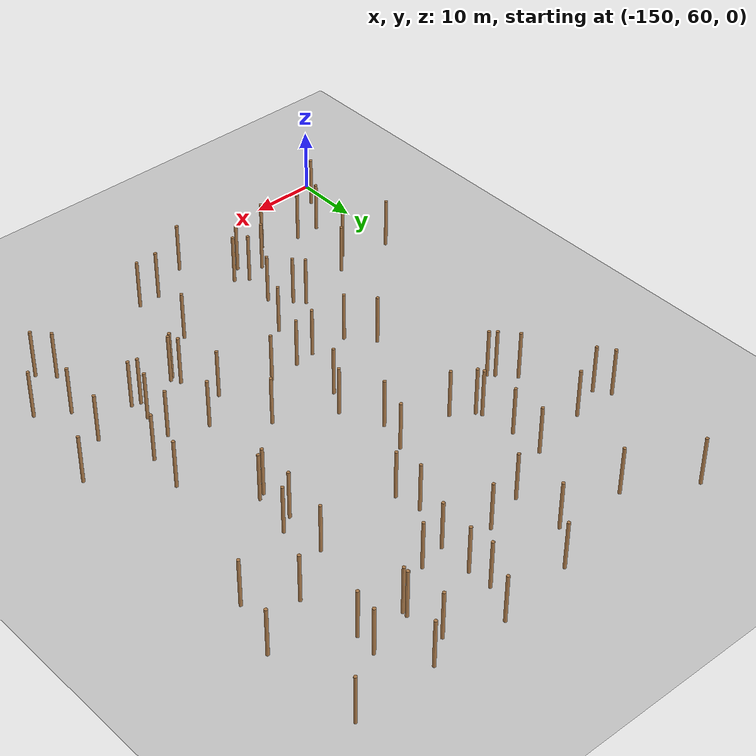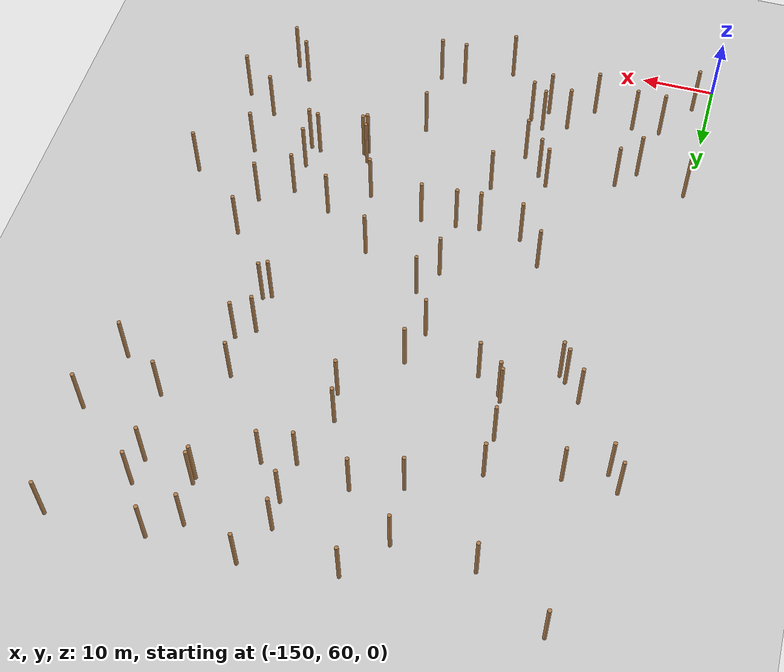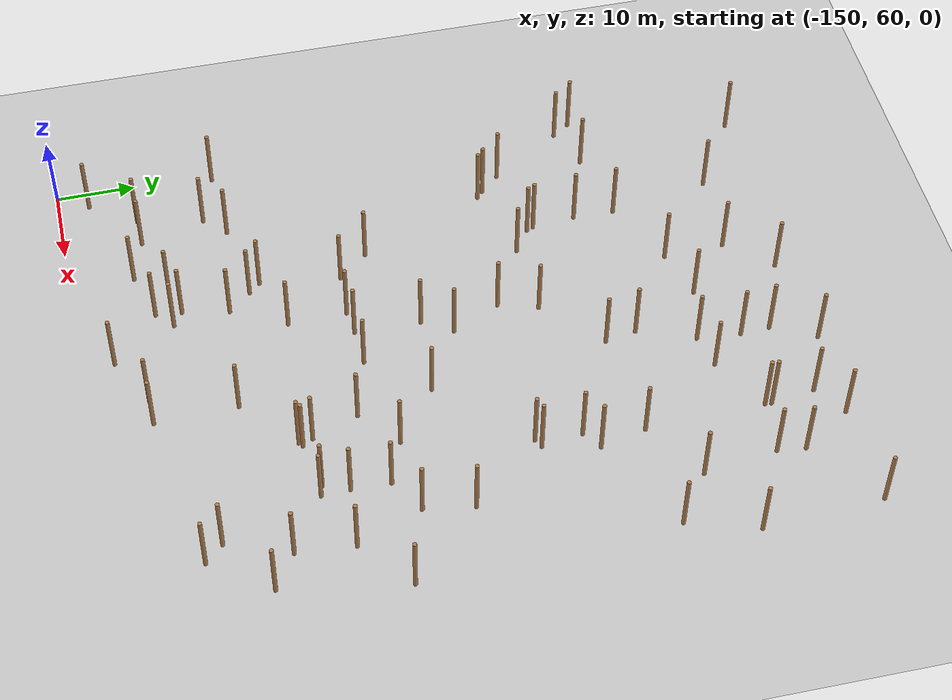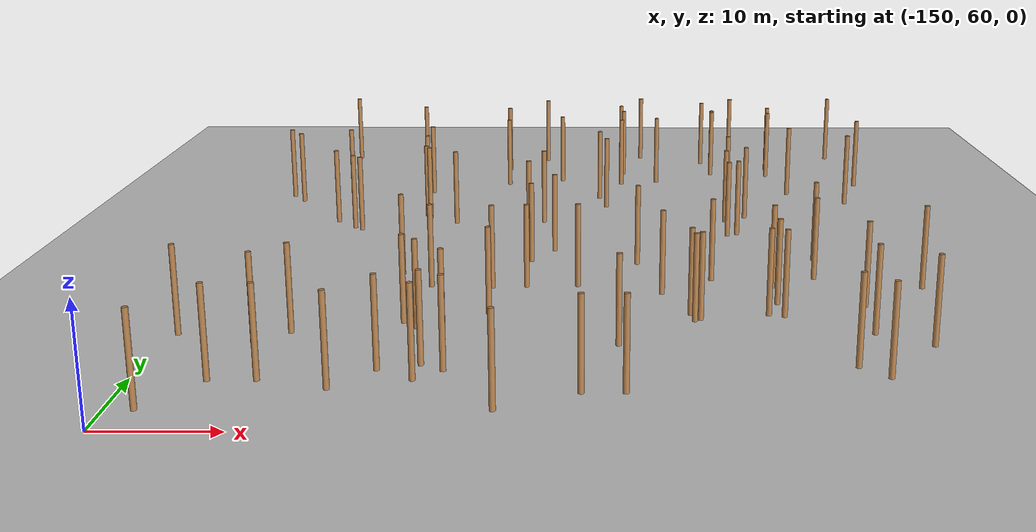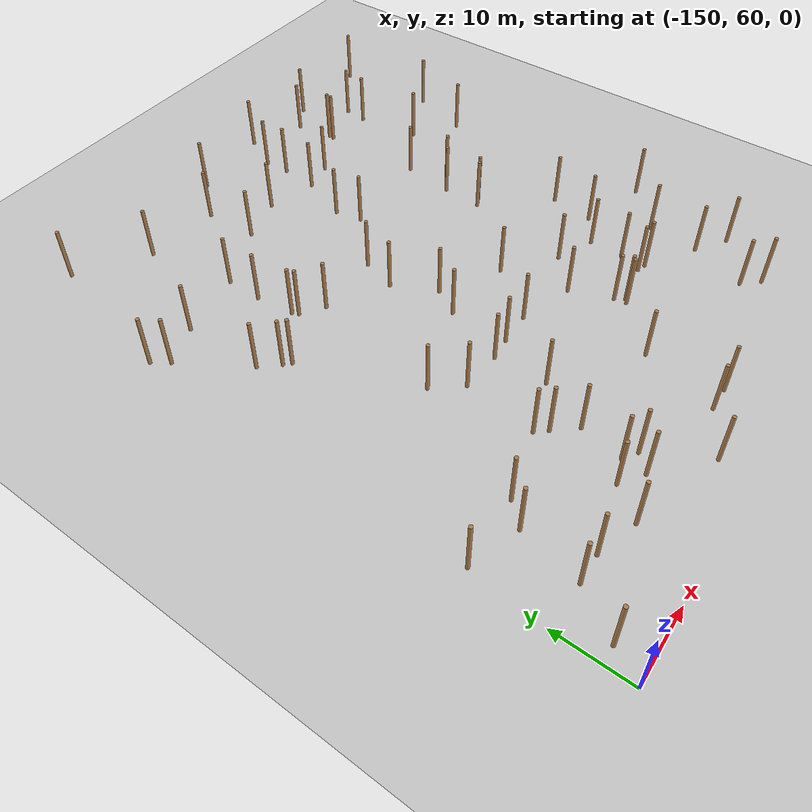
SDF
<sdf version="1.5">
 <world name="padure_tactica">
  <include><uri>model://sun</uri></include>
  <include><uri>model://ground_plane</uri></include>
  <model name="tree_11">
   <static>true</static>
   <pose>-99.19 116.53 4.0 0 0 0</pose>
   <link name="link">
    <collision name="collision">
     <geometry><cylinder><radius>0.25</radius><length>8.0</length></cylinder></geometry>
    </collision>
    <visual name="visual">
     <geometry><cylinder><radius>0.25</radius><length>8.0</length></cylinder></geometry>
     <material>
      <script><uri>file://media/materials/scripts/gazebo.material</uri><name>Gazebo/Wood</name></script>
     </material>
    </visual>
   </link>
  </model>
  <model name="tree_15">
   <static>true</static>
   <pose>-132.19 96.85 4.0 0 0 0</pose>
   <link name="link">
    <collision name="collision">
     <geometry><cylinder><radius>0.25</radius><length>8.0</length></cylinder></geometry>
    </collision>
    <visual name="visual">
     <geometry><cylinder><radius>0.25</radius><length>8.0</length></cylinder></geometry>
     <material>
      <script><uri>file://media/materials/scripts/gazebo.material</uri><name>Gazebo/Wood</name></script>
     </material>
    </visual>
   </link>
  </model>
  <model name="tree_48">
   <static>true</static>
   <pose>-112.89 126.73 4.0 0 0 0</pose>
   <link name="link">
    <collision name="collision">
     <geometry><cylinder><radius>0.25</radius><length>8.0</length></cylinder></geometry>
    </collision>
    <visual name="visual">
     <geometry><cylinder><radius>0.25</radius><length>8.0</length></cylinder></geometry>
     <material>
      <script><uri>file://media/materials/scripts/gazebo.material</uri><name>Gazebo/Wood</name></script>
     </material>
    </visual>
   </link>
  </model>
  <model name="tree_62">
   <static>true</static>
   <pose>-149.11 79.88 4.0 0 0 0</pose>
   <link name="link">
    <collision name="collision">
     <geometry><cylinder><radius>0.25</radius><length>8.0</length></cylinder></geometry>
    </collision>
    <visual name="visual">
     <geometry><cylinder><radius>0.25</radius><length>8.0</length></cylinder></geometry>
     <material>
      <script><uri>file://media/materials/scripts/gazebo.material</uri><name>Gazebo/Wood</name></script>
     </material>
    </visual>
   </link>
  </model>
  <model name="tree_70">
   <static>true</static>
   <pose>-110.21 133.75 4.0 0 0 0</pose>
   <link name="link">
    <collision name="collision">
     <geometry><cylinder><radius>0.25</radius><length>8.0</length></cylinder></geometry>
    </collision>
    <visual name="visual">
     <geometry><cylinder><radius>0.25</radius><length>8.0</length></cylinder></geometry>
     <material>
      <script><uri>file://media/materials/scripts/gazebo.material</uri><name>Gazebo/Wood</name></script>
     </material>
    </visual>
   </link>
  </model>
  <model name="tree_73">
   <static>true</static>
   <pose>-123.09 85.52 4.0 0 0 0</pose>
   <link name="link">
    <collision name="collision">
     <geometry><cylinder><radius>0.25</radius><length>8.0</length></cylinder></geometry>
    </collision>
    <visual name="visual">
     <geometry><cylinder><radius>0.25</radius><length>8.0</length></cylinder></geometry>
     <material>
      <script><uri>file://media/materials/scripts/gazebo.material</uri><name>Gazebo/Wood</name></script>
     </material>
    </visual>
   </link>
  </model>
  <model name="tree_102">
   <static>true</static>
   <pose>-97.01 93.20 4.0 0 0 0</pose>
   <link name="link">
    <collision name="collision">
     <geometry><cylinder><radius>0.25</radius><length>8.0</length></cylinder></geometry>
    </collision>
    <visual name="visual">
     <geometry><cylinder><radius>0.25</radius><length>8.0</length></cylinder></geometry>
     <material>
      <script><uri>file://media/materials/scripts/gazebo.material</uri><name>Gazebo/Wood</name></script>
     </material>
    </visual>
   </link>
  </model>
  <model name="tree_120">
   <static>true</static>
   <pose>-90.61 128.84 4.0 0 0 0</pose>
   <link name="link">
    <collision name="collision">
     <geometry><cylinder><radius>0.25</radius><length>8.0</length></cylinder></geometry>
    </collision>
    <visual name="visual">
     <geometry><cylinder><radius>0.25</radius><length>8.0</length></cylinder></geometry>
     <material>
      <script><uri>file://media/materials/scripts/gazebo.material</uri><name>Gazebo/Wood</name></script>
     </material>
    </visual>
   </link>
  </model>
  <model name="tree_137">
   <static>true</static>
   <pose>-123.27 92.84 4.0 0 0 0</pose>
   <link name="link">
    <collision name="collision">
     <geometry><cylinder><radius>0.25</radius><length>8.0</length></cylinder></geometry>
    </collision>
    <visual name="visual">
     <geometry><cylinder><radius>0.25</radius><length>8.0</length></cylinder></geometry>
     <material>
      <script><uri>file://media/materials/scripts/gazebo.material</uri><name>Gazebo/Wood</name></script>
     </material>
    </visual>
   </link>
  </model>
  <model name="tree_142">
   <static>true</static>
   <pose>-104.43 84.11 4.0 0 0 0</pose>
   <link name="link">
    <collision name="collision">
     <geometry><cylinder><radius>0.25</radius><length>8.0</length></cylinder></geometry>
    </collision>
    <visual name="visual">
     <geometry><cylinder><radius>0.25</radius><length>8.0</length></cylinder></geometry>
     <material>
      <script><uri>file://media/materials/scripts/gazebo.material</uri><name>Gazebo/Wood</name></script>
     </material>
    </visual>
   </link>
  </model>
  <model name="tree_147">
   <static>true</static>
   <pose>-99.47 110.82 4.0 0 0 0</pose>
   <link name="link">
    <collision name="collision">
     <geometry><cylinder><radius>0.25</radius><length>8.0</length></cylinder></geometry>
    </collision>
    <visual name="visual">
     <geometry><cylinder><radius>0.25</radius><length>8.0</length></cylinder></geometry>
     <material>
      <script><uri>file://media/materials/scripts/gazebo.material</uri><name>Gazebo/Wood</name></script>
     </material>
    </visual>
   </link>
  </model>
  <model name="tree_150">
   <static>true</static>
   <pose>-98.32 85.27 4.0 0 0 0</pose>
   <link name="link">
    <collision name="collision">
     <geometry><cylinder><radius>0.25</radius><length>8.0</length></cylinder></geometry>
    </collision>
    <visual name="visual">
     <geometry><cylinder><radius>0.25</radius><length>8.0</length></cylinder></geometry>
     <material>
      <script><uri>file://media/materials/scripts/gazebo.material</uri><name>Gazebo/Wood</name></script>
     </material>
    </visual>
   </link>
  </model>
  <model name="tree_154">
   <static>true</static>
   <pose>-117.68 105.11 4.0 0 0 0</pose>
   <link name="link">
    <collision name="collision">
     <geometry><cylinder><radius>0.25</radius><length>8.0</length></cylinder></geometry>
    </collision>
    <visual name="visual">
     <geometry><cylinder><radius>0.25</radius><length>8.0</length></cylinder></geometry>
     <material>
      <script><uri>file://media/materials/scripts/gazebo.material</uri><name>Gazebo/Wood</name></script>
     </material>
    </visual>
   </link>
  </model>
  <model name="tree_168">
   <static>true</static>
   <pose>-111.42 67.45 4.0 0 0 0</pose>
   <link name="link">
    <collision name="collision">
     <geometry><cylinder><radius>0.25</radius><length>8.0</length></cylinder></geometry>
    </collision>
    <visual name="visual">
     <geometry><cylinder><radius>0.25</radius><length>8.0</length></cylinder></geometry>
     <material>
      <script><uri>file://media/materials/scripts/gazebo.material</uri><name>Gazebo/Wood</name></script>
     </material>
    </visual>
   </link>
  </model>
  <model name="tree_179">
   <static>true</static>
   <pose>-121.34 64.03 4.0 0 0 0</pose>
   <link name="link">
    <collision name="collision">
     <geometry><cylinder><radius>0.25</radius><length>8.0</length></cylinder></geometry>
    </collision>
    <visual name="visual">
     <geometry><cylinder><radius>0.25</radius><length>8.0</length></cylinder></geometry>
     <material>
      <script><uri>file://media/materials/scripts/gazebo.material</uri><name>Gazebo/Wood</name></script>
     </material>
    </visual>
   </link>
  </model>
  <model name="tree_216">
   <static>true</static>
   <pose>-123.84 133.55 4.0 0 0 0</pose>
   <link name="link">
    <collision name="collision">
     <geometry><cylinder><radius>0.25</radius><length>8.0</length></cylinder></geometry>
    </collision>
    <visual name="visual">
     <geometry><cylinder><radius>0.25</radius><length>8.0</length></cylinder></geometry>
     <material>
      <script><uri>file://media/materials/scripts/gazebo.material</uri><name>Gazebo/Wood</name></script>
     </material>
    </visual>
   </link>
  </model>
  <model name="tree_296">
   <static>true</static>
   <pose>-127.96 69.84 4.0 0 0 0</pose>
   <link name="link">
    <collision name="collision">
     <geometry><cylinder><radius>0.25</radius><length>8.0</length></cylinder></geometry>
    </collision>
    <visual name="visual">
     <geometry><cylinder><radius>0.25</radius><length>8.0</length></cylinder></geometry>
     <material>
      <script><uri>file://media/materials/scripts/gazebo.material</uri><name>Gazebo/Wood</name></script>
     </material>
    </visual>
   </link>
  </model>
  <model name="tree_298">
   <static>true</static>
   <pose>-148.98 127.36 4.0 0 0 0</pose>
   <link name="link">
    <collision name="collision">
     <geometry><cylinder><radius>0.25</radius><length>8.0</length></cylinder></geometry>
    </collision>
    <visual name="visual">
     <geometry><cylinder><radius>0.25</radius><length>8.0</length></cylinder></geometry>
     <material>
      <script><uri>file://media/materials/scripts/gazebo.material</uri><name>Gazebo/Wood</name></script>
     </material>
    </visual>
   </link>
  </model>
  <model name="tree_314">
   <static>true</static>
   <pose>-96.97 84.92 4.0 0 0 0</pose>
   <link name="link">
    <collision name="collision">
     <geometry><cylinder><radius>0.25</radius><length>8.0</length></cylinder></geometry>
    </collision>
    <visual name="visual">
     <geometry><cylinder><radius>0.25</radius><length>8.0</length></cylinder></geometry>
     <material>
      <script><uri>file://media/materials/scripts/gazebo.material</uri><name>Gazebo/Wood</name></script>
     </material>
    </visual>
   </link>
  </model>
  <model name="tree_315">
   <static>true</static>
   <pose>-81.82 133.14 4.0 0 0 0</pose>
   <link name="link">
    <collision name="collision">
     <geometry><cylinder><radius>0.25</radius><length>8.0</length></cylinder></geometry>
    </collision>
    <visual name="visual">
     <geometry><cylinder><radius>0.25</radius><length>8.0</length></cylinder></geometry>
     <material>
      <script><uri>file://media/materials/scripts/gazebo.material</uri><name>Gazebo/Wood</name></script>
     </material>
    </visual>
   </link>
  </model>
  <model name="tree_322">
   <static>true</static>
   <pose>-109.78 139.19 4.0 0 0 0</pose>
   <link name="link">
    <collision name="collision">
     <geometry><cylinder><radius>0.25</radius><length>8.0</length></cylinder></geometry>
    </collision>
    <visual name="visual">
     <geometry><cylinder><radius>0.25</radius><length>8.0</length></cylinder></geometry>
     <material>
      <script><uri>file://media/materials/scripts/gazebo.material</uri><name>Gazebo/Wood</name></script>
     </material>
    </visual>
   </link>
  </model>
  <model name="tree_352">
   <static>true</static>
   <pose>-82.97 93.07 4.0 0 0 0</pose>
   <link name="link">
    <collision name="collision">
     <geometry><cylinder><radius>0.25</radius><length>8.0</length></cylinder></geometry>
    </collision>
    <visual name="visual">
     <geometry><cylinder><radius>0.25</radius><length>8.0</length></cylinder></geometry>
     <material>
      <script><uri>file://media/materials/scripts/gazebo.material</uri><name>Gazebo/Wood</name></script>
     </material>
    </visual>
   </link>
  </model>
  <model name="tree_364">
   <static>true</static>
   <pose>-144.38 147.71 4.0 0 0 0</pose>
   <link name="link">
    <collision name="collision">
     <geometry><cylinder><radius>0.25</radius><length>8.0</length></cylinder></geometry>
    </collision>
    <visual name="visual">
     <geometry><cylinder><radius>0.25</radius><length>8.0</length></cylinder></geometry>
     <material>
      <script><uri>file://media/materials/scripts/gazebo.material</uri><name>Gazebo/Wood</name></script>
     </material>
    </visual>
   </link>
  </model>
  <model name="tree_388">
   <static>true</static>
   <pose>-99.60 145.13 4.0 0 0 0</pose>
   <link name="link">
    <collision name="collision">
     <geometry><cylinder><radius>0.25</radius><length>8.0</length></cylinder></geometry>
    </collision>
    <visual name="visual">
     <geometry><cylinder><radius>0.25</radius><length>8.0</length></cylinder></geometry>
     <material>
      <script><uri>file://media/materials/scripts/gazebo.material</uri><name>Gazebo/Wood</name></script>
     </material>
    </visual>
   </link>
  </model>
  <model name="tree_393">
   <static>true</static>
   <pose>-111.76 77.68 4.0 0 0 0</pose>
   <link name="link">
    <collision name="collision">
     <geometry><cylinder><radius>0.25</radius><length>8.0</length></cylinder></geometry>
    </collision>
    <visual name="visual">
     <geometry><cylinder><radius>0.25</radius><length>8.0</length></cylinder></geometry>
     <material>
      <script><uri>file://media/materials/scripts/gazebo.material</uri><name>Gazebo/Wood</name></script>
     </material>
    </visual>
   </link>
  </model>
  <model name="tree_398">
   <static>true</static>
   <pose>-126.53 78.83 4.0 0 0 0</pose>
   <link name="link">
    <collision name="collision">
     <geometry><cylinder><radius>0.25</radius><length>8.0</length></cylinder></geometry>
    </collision>
    <visual name="visual">
     <geometry><cylinder><radius>0.25</radius><length>8.0</length></cylinder></geometry>
     <material>
      <script><uri>file://media/materials/scripts/gazebo.material</uri><name>Gazebo/Wood</name></script>
     </material>
    </visual>
   </link>
  </model>
  <model name="tree_401">
   <static>true</static>
   <pose>-89.88 80.56 4.0 0 0 0</pose>
   <link name="link">
    <collision name="collision">
     <geometry><cylinder><radius>0.25</radius><length>8.0</length></cylinder></geometry>
    </collision>
    <visual name="visual">
     <geometry><cylinder><radius>0.25</radius><length>8.0</length></cylinder></geometry>
     <material>
      <script><uri>file://media/materials/scripts/gazebo.material</uri><name>Gazebo/Wood</name></script>
     </material>
    </visual>
   </link>
  </model>
  <model name="tree_404">
   <static>true</static>
   <pose>-132.68 129.20 4.0 0 0 0</pose>
   <link name="link">
    <collision name="collision">
     <geometry><cylinder><radius>0.25</radius><length>8.0</length></cylinder></geometry>
    </collision>
    <visual name="visual">
     <geometry><cylinder><radius>0.25</radius><length>8.0</length></cylinder></geometry>
     <material>
      <script><uri>file://media/materials/scripts/gazebo.material</uri><name>Gazebo/Wood</name></script>
     </material>
    </visual>
   </link>
  </model>
  <model name="tree_411">
   <static>true</static>
   <pose>-109.41 100.58 4.0 0 0 0</pose>
   <link name="link">
    <collision name="collision">
     <geometry><cylinder><radius>0.25</radius><length>8.0</length></cylinder></geometry>
    </collision>
    <visual name="visual">
     <geometry><cylinder><radius>0.25</radius><length>8.0</length></cylinder></geometry>
     <material>
      <script><uri>file://media/materials/scripts/gazebo.material</uri><name>Gazebo/Wood</name></script>
     </material>
    </visual>
   </link>
  </model>
  <model name="tree_423">
   <static>true</static>
   <pose>-131.81 117.69 4.0 0 0 0</pose>
   <link name="link">
    <collision name="collision">
     <geometry><cylinder><radius>0.25</radius><length>8.0</length></cylinder></geometry>
    </collision>
    <visual name="visual">
     <geometry><cylinder><radius>0.25</radius><length>8.0</length></cylinder></geometry>
     <material>
      <script><uri>file://media/materials/scripts/gazebo.material</uri><name>Gazebo/Wood</name></script>
     </material>
    </visual>
   </link>
  </model>
  <model name="tree_487">
   <static>true</static>
   <pose>-104.97 83.71 4.0 0 0 0</pose>
   <link name="link">
    <collision name="collision">
     <geometry><cylinder><radius>0.25</radius><length>8.0</length></cylinder></geometry>
    </collision>
    <visual name="visual">
     <geometry><cylinder><radius>0.25</radius><length>8.0</length></cylinder></geometry>
     <material>
      <script><uri>file://media/materials/scripts/gazebo.material</uri><name>Gazebo/Wood</name></script>
     </material>
    </visual>
   </link>
  </model>
  <model name="tree_492">
   <static>true</static>
   <pose>-143.89 69.57 4.0 0 0 0</pose>
   <link name="link">
    <collision name="collision">
     <geometry><cylinder><radius>0.25</radius><length>8.0</length></cylinder></geometry>
    </collision>
    <visual name="visual">
     <geometry><cylinder><radius>0.25</radius><length>8.0</length></cylinder></geometry>
     <material>
      <script><uri>file://media/materials/scripts/gazebo.material</uri><name>Gazebo/Wood</name></script>
     </material>
    </visual>
   </link>
  </model>
  <model name="tree_519">
   <static>true</static>
   <pose>-95.69 147.82 4.0 0 0 0</pose>
   <link name="link">
    <collision name="collision">
     <geometry><cylinder><radius>0.25</radius><length>8.0</length></cylinder></geometry>
    </collision>
    <visual name="visual">
     <geometry><cylinder><radius>0.25</radius><length>8.0</length></cylinder></geometry>
     <material>
      <script><uri>file://media/materials/scripts/gazebo.material</uri><name>Gazebo/Wood</name></script>
     </material>
    </visual>
   </link>
  </model>
  <model name="tree_545">
   <static>true</static>
   <pose>-139.58 113.65 4.0 0 0 0</pose>
   <link name="link">
    <collision name="collision">
     <geometry><cylinder><radius>0.25</radius><length>8.0</length></cylinder></geometry>
    </collision>
    <visual name="visual">
     <geometry><cylinder><radius>0.25</radius><length>8.0</length></cylinder></geometry>
     <material>
      <script><uri>file://media/materials/scripts/gazebo.material</uri><name>Gazebo/Wood</name></script>
     </material>
    </visual>
   </link>
  </model>
  <model name="tree_554">
   <static>true</static>
   <pose>-91.57 141.54 4.0 0 0 0</pose>
   <link name="link">
    <collision name="collision">
     <geometry><cylinder><radius>0.25</radius><length>8.0</length></cylinder></geometry>
    </collision>
    <visual name="visual">
     <geometry><cylinder><radius>0.25</radius><length>8.0</length></cylinder></geometry>
     <material>
      <script><uri>file://media/materials/scripts/gazebo.material</uri><name>Gazebo/Wood</name></script>
     </material>
    </visual>
   </link>
  </model>
  <model name="tree_564">
   <static>true</static>
   <pose>-128.72 115.62 4.0 0 0 0</pose>
   <link name="link">
    <collision name="collision">
     <geometry><cylinder><radius>0.25</radius><length>8.0</length></cylinder></geometry>
    </collision>
    <visual name="visual">
     <geometry><cylinder><radius>0.25</radius><length>8.0</length></cylinder></geometry>
     <material>
      <script><uri>file://media/materials/scripts/gazebo.material</uri><name>Gazebo/Wood</name></script>
     </material>
    </visual>
   </link>
  </model>
  <model name="tree_594">
   <static>true</static>
   <pose>-82.83 148.09 4.0 0 0 0</pose>
   <link name="link">
    <collision name="collision">
     <geometry><cylinder><radius>0.25</radius><length>8.0</length></cylinder></geometry>
    </collision>
    <visual name="visual">
     <geometry><cylinder><radius>0.25</radius><length>8.0</length></cylinder></geometry>
     <material>
      <script><uri>file://media/materials/scripts/gazebo.material</uri><name>Gazebo/Wood</name></script>
     </material>
    </visual>
   </link>
  </model>
  <model name="tree_614">
   <static>true</static>
   <pose>-117.39 135.45 4.0 0 0 0</pose>
   <link name="link">
    <collision name="collision">
     <geometry><cylinder><radius>0.25</radius><length>8.0</length></cylinder></geometry>
    </collision>
    <visual name="visual">
     <geometry><cylinder><radius>0.25</radius><length>8.0</length></cylinder></geometry>
     <material>
      <script><uri>file://media/materials/scripts/gazebo.material</uri><name>Gazebo/Wood</name></script>
     </material>
    </visual>
   </link>
  </model>
  <model name="tree_617">
   <static>true</static>
   <pose>-138.71 112.83 4.0 0 0 0</pose>
   <link name="link">
    <collision name="collision">
     <geometry><cylinder><radius>0.25</radius><length>8.0</length></cylinder></geometry>
    </collision>
    <visual name="visual">
     <geometry><cylinder><radius>0.25</radius><length>8.0</length></cylinder></geometry>
     <material>
      <script><uri>file://media/materials/scripts/gazebo.material</uri><name>Gazebo/Wood</name></script>
     </material>
    </visual>
   </link>
  </model>
  <model name="tree_618">
   <static>true</static>
   <pose>-91.97 138.09 4.0 0 0 0</pose>
   <link name="link">
    <collision name="collision">
     <geometry><cylinder><radius>0.25</radius><length>8.0</length></cylinder></geometry>
    </collision>
    <visual name="visual">
     <geometry><cylinder><radius>0.25</radius><length>8.0</length></cylinder></geometry>
     <material>
      <script><uri>file://media/materials/scripts/gazebo.material</uri><name>Gazebo/Wood</name></script>
     </material>
    </visual>
   </link>
  </model>
  <model name="tree_657">
   <static>true</static>
   <pose>-120.05 93.20 4.0 0 0 0</pose>
   <link name="link">
    <collision name="collision">
     <geometry><cylinder><radius>0.25</radius><length>8.0</length></cylinder></geometry>
    </collision>
    <visual name="visual">
     <geometry><cylinder><radius>0.25</radius><length>8.0</length></cylinder></geometry>
     <material>
      <script><uri>file://media/materials/scripts/gazebo.material</uri><name>Gazebo/Wood</name></script>
     </material>
    </visual>
   </link>
  </model>
  <model name="tree_658">
   <static>true</static>
   <pose>-114.85 67.39 4.0 0 0 0</pose>
   <link name="link">
    <collision name="collision">
     <geometry><cylinder><radius>0.25</radius><length>8.0</length></cylinder></geometry>
    </collision>
    <visual name="visual">
     <geometry><cylinder><radius>0.25</radius><length>8.0</length></cylinder></geometry>
     <material>
      <script><uri>file://media/materials/scripts/gazebo.material</uri><name>Gazebo/Wood</name></script>
     </material>
    </visual>
   </link>
  </model>
  <model name="tree_705">
   <static>true</static>
   <pose>-92.76 72.86 4.0 0 0 0</pose>
   <link name="link">
    <collision name="collision">
     <geometry><cylinder><radius>0.25</radius><length>8.0</length></cylinder></geometry>
    </collision>
    <visual name="visual">
     <geometry><cylinder><radius>0.25</radius><length>8.0</length></cylinder></geometry>
     <material>
      <script><uri>file://media/materials/scripts/gazebo.material</uri><name>Gazebo/Wood</name></script>
     </material>
    </visual>
   </link>
  </model>
  <model name="tree_708">
   <static>true</static>
   <pose>-107.30 148.24 4.0 0 0 0</pose>
   <link name="link">
    <collision name="collision">
     <geometry><cylinder><radius>0.25</radius><length>8.0</length></cylinder></geometry>
    </collision>
    <visual name="visual">
     <geometry><cylinder><radius>0.25</radius><length>8.0</length></cylinder></geometry>
     <material>
      <script><uri>file://media/materials/scripts/gazebo.material</uri><name>Gazebo/Wood</name></script>
     </material>
    </visual>
   </link>
  </model>
  <model name="tree_712">
   <static>true</static>
   <pose>-124.16 141.21 4.0 0 0 0</pose>
   <link name="link">
    <collision name="collision">
     <geometry><cylinder><radius>0.25</radius><length>8.0</length></cylinder></geometry>
    </collision>
    <visual name="visual">
     <geometry><cylinder><radius>0.25</radius><length>8.0</length></cylinder></geometry>
     <material>
      <script><uri>file://media/materials/scripts/gazebo.material</uri><name>Gazebo/Wood</name></script>
     </material>
    </visual>
   </link>
  </model>
  <model name="tree_718">
   <static>true</static>
   <pose>-96.84 118.14 4.0 0 0 0</pose>
   <link name="link">
    <collision name="collision">
     <geometry><cylinder><radius>0.25</radius><length>8.0</length></cylinder></geometry>
    </collision>
    <visual name="visual">
     <geometry><cylinder><radius>0.25</radius><length>8.0</length></cylinder></geometry>
     <material>
      <script><uri>file://media/materials/scripts/gazebo.material</uri><name>Gazebo/Wood</name></script>
     </material>
    </visual>
   </link>
  </model>
  <model name="tree_725">
   <static>true</static>
   <pose>-112.16 122.82 4.0 0 0 0</pose>
   <link name="link">
    <collision name="collision">
     <geometry><cylinder><radius>0.25</radius><length>8.0</length></cylinder></geometry>
    </collision>
    <visual name="visual">
     <geometry><cylinder><radius>0.25</radius><length>8.0</length></cylinder></geometry>
     <material>
      <script><uri>file://media/materials/scripts/gazebo.material</uri><name>Gazebo/Wood</name></script>
     </material>
    </visual>
   </link>
  </model>
  <model name="tree_731">
   <static>true</static>
   <pose>-129.04 81.68 4.0 0 0 0</pose>
   <link name="link">
    <collision name="collision">
     <geometry><cylinder><radius>0.25</radius><length>8.0</length></cylinder></geometry>
    </collision>
    <visual name="visual">
     <geometry><cylinder><radius>0.25</radius><length>8.0</length></cylinder></geometry>
     <material>
      <script><uri>file://media/materials/scripts/gazebo.material</uri><name>Gazebo/Wood</name></script>
     </material>
    </visual>
   </link>
  </model>
  <model name="tree_764">
   <static>true</static>
   <pose>-105.22 85.40 4.0 0 0 0</pose>
   <link name="link">
    <collision name="collision">
     <geometry><cylinder><radius>0.25</radius><length>8.0</length></cylinder></geometry>
    </collision>
    <visual name="visual">
     <geometry><cylinder><radius>0.25</radius><length>8.0</length></cylinder></geometry>
     <material>
      <script><uri>file://media/materials/scripts/gazebo.material</uri><name>Gazebo/Wood</name></script>
     </material>
    </visual>
   </link>
  </model>
  <model name="tree_775">
   <static>true</static>
   <pose>-127.67 73.06 4.0 0 0 0</pose>
   <link name="link">
    <collision name="collision">
     <geometry><cylinder><radius>0.25</radius><length>8.0</length></cylinder></geometry>
    </collision>
    <visual name="visual">
     <geometry><cylinder><radius>0.25</radius><length>8.0</length></cylinder></geometry>
     <material>
      <script><uri>file://media/materials/scripts/gazebo.material</uri><name>Gazebo/Wood</name></script>
     </material>
    </visual>
   </link>
  </model>
  <model name="tree_779">
   <static>true</static>
   <pose>-129.02 93.15 4.0 0 0 0</pose>
   <link name="link">
    <collision name="collision">
     <geometry><cylinder><radius>0.25</radius><length>8.0</length></cylinder></geometry>
    </collision>
    <visual name="visual">
     <geometry><cylinder><radius>0.25</radius><length>8.0</length></cylinder></geometry>
     <material>
      <script><uri>file://media/materials/scripts/gazebo.material</uri><name>Gazebo/Wood</name></script>
     </material>
    </visual>
   </link>
  </model>
  <model name="tree_792">
   <static>true</static>
   <pose>-115.24 93.44 4.0 0 0 0</pose>
   <link name="link">
    <collision name="collision">
     <geometry><cylinder><radius>0.25</radius><length>8.0</length></cylinder></geometry>
    </collision>
    <visual name="visual">
     <geometry><cylinder><radius>0.25</radius><length>8.0</length></cylinder></geometry>
     <material>
      <script><uri>file://media/materials/scripts/gazebo.material</uri><name>Gazebo/Wood</name></script>
     </material>
    </visual>
   </link>
  </model>
  <model name="tree_827">
   <static>true</static>
   <pose>-130.34 83.11 4.0 0 0 0</pose>
   <link name="link">
    <collision name="collision">
     <geometry><cylinder><radius>0.25</radius><length>8.0</length></cylinder></geometry>
    </collision>
    <visual name="visual">
     <geometry><cylinder><radius>0.25</radius><length>8.0</length></cylinder></geometry>
     <material>
      <script><uri>file://media/materials/scripts/gazebo.material</uri><name>Gazebo/Wood</name></script>
     </material>
    </visual>
   </link>
  </model>
  <model name="tree_853">
   <static>true</static>
   <pose>-134.88 141.88 4.0 0 0 0</pose>
   <link name="link">
    <collision name="collision">
     <geometry><cylinder><radius>0.25</radius><length>8.0</length></cylinder></geometry>
    </collision>
    <visual name="visual">
     <geometry><cylinder><radius>0.25</radius><length>8.0</length></cylinder></geometry>
     <material>
      <script><uri>file://media/materials/scripts/gazebo.material</uri><name>Gazebo/Wood</name></script>
     </material>
    </visual>
   </link>
  </model>
  <model name="tree_872">
   <static>true</static>
   <pose>-119.48 146.66 4.0 0 0 0</pose>
   <link name="link">
    <collision name="collision">
     <geometry><cylinder><radius>0.25</radius><length>8.0</length></cylinder></geometry>
    </collision>
    <visual name="visual">
     <geometry><cylinder><radius>0.25</radius><length>8.0</length></cylinder></geometry>
     <material>
      <script><uri>file://media/materials/scripts/gazebo.material</uri><name>Gazebo/Wood</name></script>
     </material>
    </visual>
   </link>
  </model>
  <model name="tree_907">
   <static>true</static>
   <pose>-141.79 116.07 4.0 0 0 0</pose>
   <link name="link">
    <collision name="collision">
     <geometry><cylinder><radius>0.25</radius><length>8.0</length></cylinder></geometry>
    </collision>
    <visual name="visual">
     <geometry><cylinder><radius>0.25</radius><length>8.0</length></cylinder></geometry>
     <material>
      <script><uri>file://media/materials/scripts/gazebo.material</uri><name>Gazebo/Wood</name></script>
     </material>
    </visual>
   </link>
  </model>
  <model name="tree_909">
   <static>true</static>
   <pose>-90.64 70.61 4.0 0 0 0</pose>
   <link name="link">
    <collision name="collision">
     <geometry><cylinder><radius>0.25</radius><length>8.0</length></cylinder></geometry>
    </collision>
    <visual name="visual">
     <geometry><cylinder><radius>0.25</radius><length>8.0</length></cylinder></geometry>
     <material>
      <script><uri>file://media/materials/scripts/gazebo.material</uri><name>Gazebo/Wood</name></script>
     </material>
    </visual>
   </link>
  </model>
  <model name="tree_915">
   <static>true</static>
   <pose>-98.40 111.38 4.0 0 0 0</pose>
   <link name="link">
    <collision name="collision">
     <geometry><cylinder><radius>0.25</radius><length>8.0</length></cylinder></geometry>
    </collision>
    <visual name="visual">
     <geometry><cylinder><radius>0.25</radius><length>8.0</length></cylinder></geometry>
     <material>
      <script><uri>file://media/materials/scripts/gazebo.material</uri><name>Gazebo/Wood</name></script>
     </material>
    </visual>
   </link>
  </model>
  <model name="tree_917">
   <static>true</static>
   <pose>-91.73 102.04 4.0 0 0 0</pose>
   <link name="link">
    <collision name="collision">
     <geometry><cylinder><radius>0.25</radius><length>8.0</length></cylinder></geometry>
    </collision>
    <visual name="visual">
     <geometry><cylinder><radius>0.25</radius><length>8.0</length></cylinder></geometry>
     <material>
      <script><uri>file://media/materials/scripts/gazebo.material</uri><name>Gazebo/Wood</name></script>
     </material>
    </visual>
   </link>
  </model>
  <model name="tree_937">
   <static>true</static>
   <pose>-98.83 138.82 4.0 0 0 0</pose>
   <link name="link">
    <collision name="collision">
     <geometry><cylinder><radius>0.25</radius><length>8.0</length></cylinder></geometry>
    </collision>
    <visual name="visual">
     <geometry><cylinder><radius>0.25</radius><length>8.0</length></cylinder></geometry>
     <material>
      <script><uri>file://media/materials/scripts/gazebo.material</uri><name>Gazebo/Wood</name></script>
     </material>
    </visual>
   </link>
  </model>
  <model name="tree_938">
   <static>true</static>
   <pose>-139.59 80.44 4.0 0 0 0</pose>
   <link name="link">
    <collision name="collision">
     <geometry><cylinder><radius>0.25</radius><length>8.0</length></cylinder></geometry>
    </collision>
    <visual name="visual">
     <geometry><cylinder><radius>0.25</radius><length>8.0</length></cylinder></geometry>
     <material>
      <script><uri>file://media/materials/scripts/gazebo.material</uri><name>Gazebo/Wood</name></script>
     </material>
    </visual>
   </link>
  </model>
  <model name="tree_939">
   <static>true</static>
   <pose>-97.15 88.40 4.0 0 0 0</pose>
   <link name="link">
    <collision name="collision">
     <geometry><cylinder><radius>0.25</radius><length>8.0</length></cylinder></geometry>
    </collision>
    <visual name="visual">
     <geometry><cylinder><radius>0.25</radius><length>8.0</length></cylinder></geometry>
     <material>
      <script><uri>file://media/materials/scripts/gazebo.material</uri><name>Gazebo/Wood</name></script>
     </material>
    </visual>
   </link>
  </model>
  <model name="tree_940">
   <static>true</static>
   <pose>-132.22 118.56 4.0 0 0 0</pose>
   <link name="link">
    <collision name="collision">
     <geometry><cylinder><radius>0.25</radius><length>8.0</length></cylinder></geometry>
    </collision>
    <visual name="visual">
     <geometry><cylinder><radius>0.25</radius><length>8.0</length></cylinder></geometry>
     <material>
      <script><uri>file://media/materials/scripts/gazebo.material</uri><name>Gazebo/Wood</name></script>
     </material>
    </visual>
   </link>
  </model>
  <model name="tree_949">
   <static>true</static>
   <pose>-119.10 116.11 4.0 0 0 0</pose>
   <link name="link">
    <collision name="collision">
     <geometry><cylinder><radius>0.25</radius><length>8.0</length></cylinder></geometry>
    </collision>
    <visual name="visual">
     <geometry><cylinder><radius>0.25</radius><length>8.0</length></cylinder></geometry>
     <material>
      <script><uri>file://media/materials/scripts/gazebo.material</uri><name>Gazebo/Wood</name></script>
     </material>
    </visual>
   </link>
  </model>
  <model name="tree_955">
   <static>true</static>
   <pose>-131.04 71.94 4.0 0 0 0</pose>
   <link name="link">
    <collision name="collision">
     <geometry><cylinder><radius>0.25</radius><length>8.0</length></cylinder></geometry>
    </collision>
    <visual name="visual">
     <geometry><cylinder><radius>0.25</radius><length>8.0</length></cylinder></geometry>
     <material>
      <script><uri>file://media/materials/scripts/gazebo.material</uri><name>Gazebo/Wood</name></script>
     </material>
    </visual>
   </link>
  </model>
  <model name="tree_956">
   <static>true</static>
   <pose>-120.58 111.22 4.0 0 0 0</pose>
   <link name="link">
    <collision name="collision">
     <geometry><cylinder><radius>0.25</radius><length>8.0</length></cylinder></geometry>
    </collision>
    <visual name="visual">
     <geometry><cylinder><radius>0.25</radius><length>8.0</length></cylinder></geometry>
     <material>
      <script><uri>file://media/materials/scripts/gazebo.material</uri><name>Gazebo/Wood</name></script>
     </material>
    </visual>
   </link>
  </model>
  <model name="tree_969">
   <static>true</static>
   <pose>-89.33 87.69 4.0 0 0 0</pose>
   <link name="link">
    <collision name="collision">
     <geometry><cylinder><radius>0.25</radius><length>8.0</length></cylinder></geometry>
    </collision>
    <visual name="visual">
     <geometry><cylinder><radius>0.25</radius><length>8.0</length></cylinder></geometry>
     <material>
      <script><uri>file://media/materials/scripts/gazebo.material</uri><name>Gazebo/Wood</name></script>
     </material>
    </visual>
   </link>
  </model>
  <model name="tree_978">
   <static>true</static>
   <pose>-125.77 71.83 4.0 0 0 0</pose>
   <link name="link">
    <collision name="collision">
     <geometry><cylinder><radius>0.25</radius><length>8.0</length></cylinder></geometry>
    </collision>
    <visual name="visual">
     <geometry><cylinder><radius>0.25</radius><length>8.0</length></cylinder></geometry>
     <material>
      <script><uri>file://media/materials/scripts/gazebo.material</uri><name>Gazebo/Wood</name></script>
     </material>
    </visual>
   </link>
  </model>
  <model name="tree_979">
   <static>true</static>
   <pose>-92.67 95.89 4.0 0 0 0</pose>
   <link name="link">
    <collision name="collision">
     <geometry><cylinder><radius>0.25</radius><length>8.0</length></cylinder></geometry>
    </collision>
    <visual name="visual">
     <geometry><cylinder><radius>0.25</radius><length>8.0</length></cylinder></geometry>
     <material>
      <script><uri>file://media/materials/scripts/gazebo.material</uri><name>Gazebo/Wood</name></script>
     </material>
    </visual>
   </link>
  </model>
  <model name="tree_994">
   <static>true</static>
   <pose>-147.45 125.13 4.0 0 0 0</pose>
   <link name="link">
    <collision name="collision">
     <geometry><cylinder><radius>0.25</radius><length>8.0</length></cylinder></geometry>
    </collision>
    <visual name="visual">
     <geometry><cylinder><radius>0.25</radius><length>8.0</length></cylinder></geometry>
     <material>
      <script><uri>file://media/materials/scripts/gazebo.material</uri><name>Gazebo/Wood</name></script>
     </material>
    </visual>
   </link>
  </model>
  <model name="tree_1000">
   <static>true</static>
   <pose>-140.03 69.68 4.0 0 0 0</pose>
   <link name="link">
    <collision name="collision">
     <geometry><cylinder><radius>0.25</radius><length>8.0</length></cylinder></geometry>
    </collision>
    <visual name="visual">
     <geometry><cylinder><radius>0.25</radius><length>8.0</length></cylinder></geometry>
     <material>
      <script><uri>file://media/materials/scripts/gazebo.material</uri><name>Gazebo/Wood</name></script>
     </material>
    </visual>
   </link>
  </model>
  <model name="tree_1014">
   <static>true</static>
   <pose>-109.99 142.88 4.0 0 0 0</pose>
   <link name="link">
    <collision name="collision">
     <geometry><cylinder><radius>0.25</radius><length>8.0</length></cylinder></geometry>
    </collision>
    <visual name="visual">
     <geometry><cylinder><radius>0.25</radius><length>8.0</length></cylinder></geometry>
     <material>
      <script><uri>file://media/materials/scripts/gazebo.material</uri><name>Gazebo/Wood</name></script>
     </material>
    </visual>
   </link>
  </model>
  <model name="tree_1030">
   <static>true</static>
   <pose>-132.76 124.04 4.0 0 0 0</pose>
   <link name="link">
    <collision name="collision">
     <geometry><cylinder><radius>0.25</radius><length>8.0</length></cylinder></geometry>
    </collision>
    <visual name="visual">
     <geometry><cylinder><radius>0.25</radius><length>8.0</length></cylinder></geometry>
     <material>
      <script><uri>file://media/materials/scripts/gazebo.material</uri><name>Gazebo/Wood</name></script>
     </material>
    </visual>
   </link>
  </model>
  <model name="tree_1048">
   <static>true</static>
   <pose>-134.29 67.98 4.0 0 0 0</pose>
   <link name="link">
    <collision name="collision">
     <geometry><cylinder><radius>0.25</radius><length>8.0</length></cylinder></geometry>
    </collision>
    <visual name="visual">
     <geometry><cylinder><radius>0.25</radius><length>8.0</length></cylinder></geometry>
     <material>
      <script><uri>file://media/materials/scripts/gazebo.material</uri><name>Gazebo/Wood</name></script>
     </material>
    </visual>
   </link>
  </model>
  <model name="tree_1061">
   <static>true</static>
   <pose>-85.51 77.71 4.0 0 0 0</pose>
   <link name="link">
    <collision name="collision">
     <geometry><cylinder><radius>0.25</radius><length>8.0</length></cylinder></geometry>
    </collision>
    <visual name="visual">
     <geometry><cylinder><radius>0.25</radius><length>8.0</length></cylinder></geometry>
     <material>
      <script><uri>file://media/materials/scripts/gazebo.material</uri><name>Gazebo/Wood</name></script>
     </material>
    </visual>
   </link>
  </model>
  <model name="tree_1076">
   <static>true</static>
   <pose>-102.53 95.36 4.0 0 0 0</pose>
   <link name="link">
    <collision name="collision">
     <geometry><cylinder><radius>0.25</radius><length>8.0</length></cylinder></geometry>
    </collision>
    <visual name="visual">
     <geometry><cylinder><radius>0.25</radius><length>8.0</length></cylinder></geometry>
     <material>
      <script><uri>file://media/materials/scripts/gazebo.material</uri><name>Gazebo/Wood</name></script>
     </material>
    </visual>
   </link>
  </model>
  <model name="tree_1080">
   <static>true</static>
   <pose>-142.03 127.30 4.0 0 0 0</pose>
   <link name="link">
    <collision name="collision">
     <geometry><cylinder><radius>0.25</radius><length>8.0</length></cylinder></geometry>
    </collision>
    <visual name="visual">
     <geometry><cylinder><radius>0.25</radius><length>8.0</length></cylinder></geometry>
     <material>
      <script><uri>file://media/materials/scripts/gazebo.material</uri><name>Gazebo/Wood</name></script>
     </material>
    </visual>
   </link>
  </model>
  <model name="tree_1082">
   <static>true</static>
   <pose>-119.90 101.43 4.0 0 0 0</pose>
   <link name="link">
    <collision name="collision">
     <geometry><cylinder><radius>0.25</radius><length>8.0</length></cylinder></geometry>
    </collision>
    <visual name="visual">
     <geometry><cylinder><radius>0.25</radius><length>8.0</length></cylinder></geometry>
     <material>
      <script><uri>file://media/materials/scripts/gazebo.material</uri><name>Gazebo/Wood</name></script>
     </material>
    </visual>
   </link>
  </model>
  <model name="tree_1100">
   <static>true</static>
   <pose>-107.46 91.19 4.0 0 0 0</pose>
   <link name="link">
    <collision name="collision">
     <geometry><cylinder><radius>0.25</radius><length>8.0</length></cylinder></geometry>
    </collision>
    <visual name="visual">
     <geometry><cylinder><radius>0.25</radius><length>8.0</length></cylinder></geometry>
     <material>
      <script><uri>file://media/materials/scripts/gazebo.material</uri><name>Gazebo/Wood</name></script>
     </material>
    </visual>
   </link>
  </model>
  <model name="tree_1110">
   <static>true</static>
   <pose>-147.71 63.87 4.0 0 0 0</pose>
   <link name="link">
    <collision name="collision">
     <geometry><cylinder><radius>0.25</radius><length>8.0</length></cylinder></geometry>
    </collision>
    <visual name="visual">
     <geometry><cylinder><radius>0.25</radius><length>8.0</length></cylinder></geometry>
     <material>
      <script><uri>file://media/materials/scripts/gazebo.material</uri><name>Gazebo/Wood</name></script>
     </material>
    </visual>
   </link>
  </model>
  <model name="tree_1121">
   <static>true</static>
   <pose>-105.89 134.73 4.0 0 0 0</pose>
   <link name="link">
    <collision name="collision">
     <geometry><cylinder><radius>0.25</radius><length>8.0</length></cylinder></geometry>
    </collision>
    <visual name="visual">
     <geometry><cylinder><radius>0.25</radius><length>8.0</length></cylinder></geometry>
     <material>
      <script><uri>file://media/materials/scripts/gazebo.material</uri><name>Gazebo/Wood</name></script>
     </material>
    </visual>
   </link>
  </model>
  <model name="tree_1126">
   <static>true</static>
   <pose>-98.77 139.62 4.0 0 0 0</pose>
   <link name="link">
    <collision name="collision">
     <geometry><cylinder><radius>0.25</radius><length>8.0</length></cylinder></geometry>
    </collision>
    <visual name="visual">
     <geometry><cylinder><radius>0.25</radius><length>8.0</length></cylinder></geometry>
     <material>
      <script><uri>file://media/materials/scripts/gazebo.material</uri><name>Gazebo/Wood</name></script>
     </material>
    </visual>
   </link>
  </model>
  <model name="tree_1182">
   <static>true</static>
   <pose>-142.19 77.78 4.0 0 0 0</pose>
   <link name="link">
    <collision name="collision">
     <geometry><cylinder><radius>0.25</radius><length>8.0</length></cylinder></geometry>
    </collision>
    <visual name="visual">
     <geometry><cylinder><radius>0.25</radius><length>8.0</length></cylinder></geometry>
     <material>
      <script><uri>file://media/materials/scripts/gazebo.material</uri><name>Gazebo/Wood</name></script>
     </material>
    </visual>
   </link>
  </model>
  <model name="tree_1186">
   <static>true</static>
   <pose>-84.52 124.56 4.0 0 0 0</pose>
   <link name="link">
    <collision name="collision">
     <geometry><cylinder><radius>0.25</radius><length>8.0</length></cylinder></geometry>
    </collision>
    <visual name="visual">
     <geometry><cylinder><radius>0.25</radius><length>8.0</length></cylinder></geometry>
     <material>
      <script><uri>file://media/materials/scripts/gazebo.material</uri><name>Gazebo/Wood</name></script>
     </material>
    </visual>
   </link>
  </model>
  <model name="tree_1190">
   <static>true</static>
   <pose>-98.24 123.91 4.0 0 0 0</pose>
   <link name="link">
    <collision name="collision">
     <geometry><cylinder><radius>0.25</radius><length>8.0</length></cylinder></geometry>
    </collision>
    <visual name="visual">
     <geometry><cylinder><radius>0.25</radius><length>8.0</length></cylinder></geometry>
     <material>
      <script><uri>file://media/materials/scripts/gazebo.material</uri><name>Gazebo/Wood</name></script>
     </material>
    </visual>
   </link>
  </model>
 </world>
</sdf>
